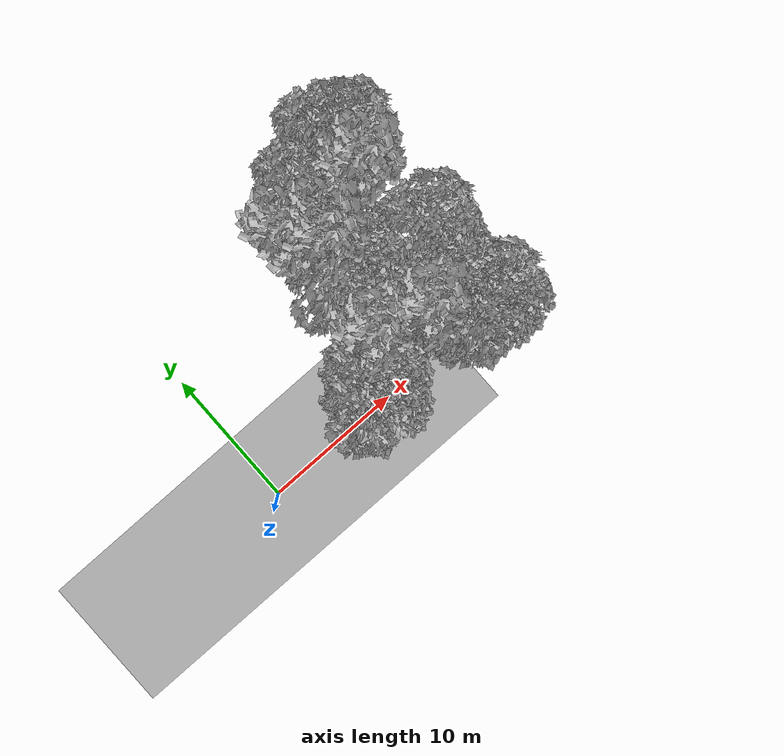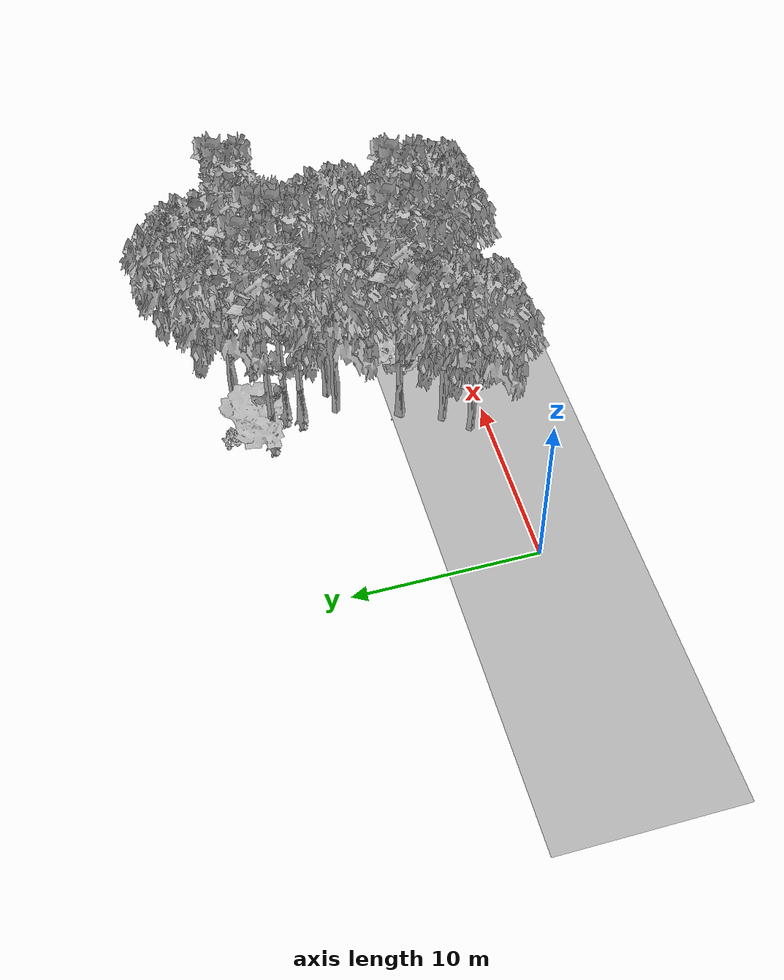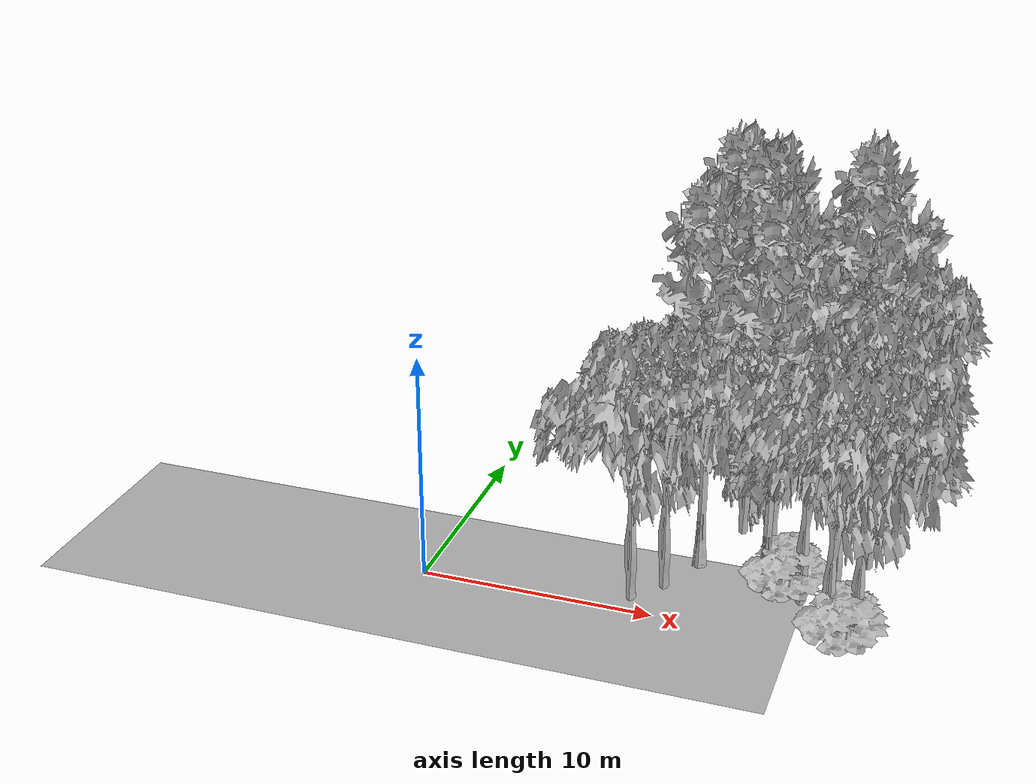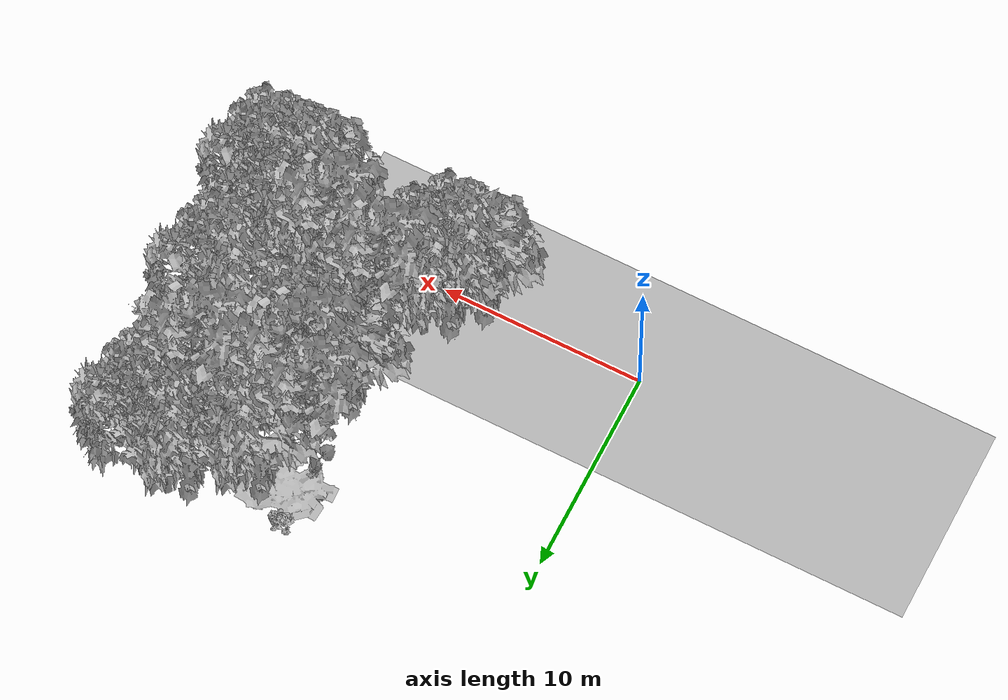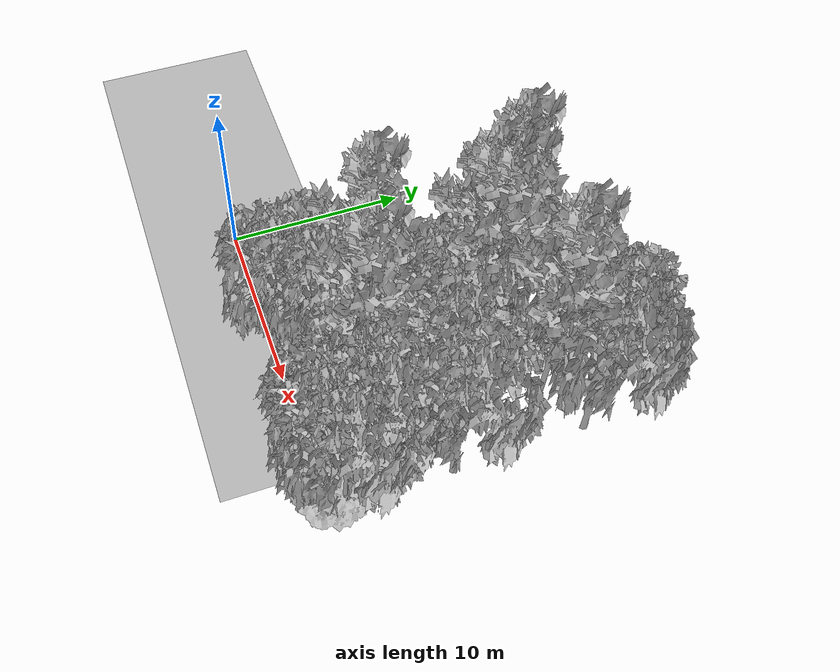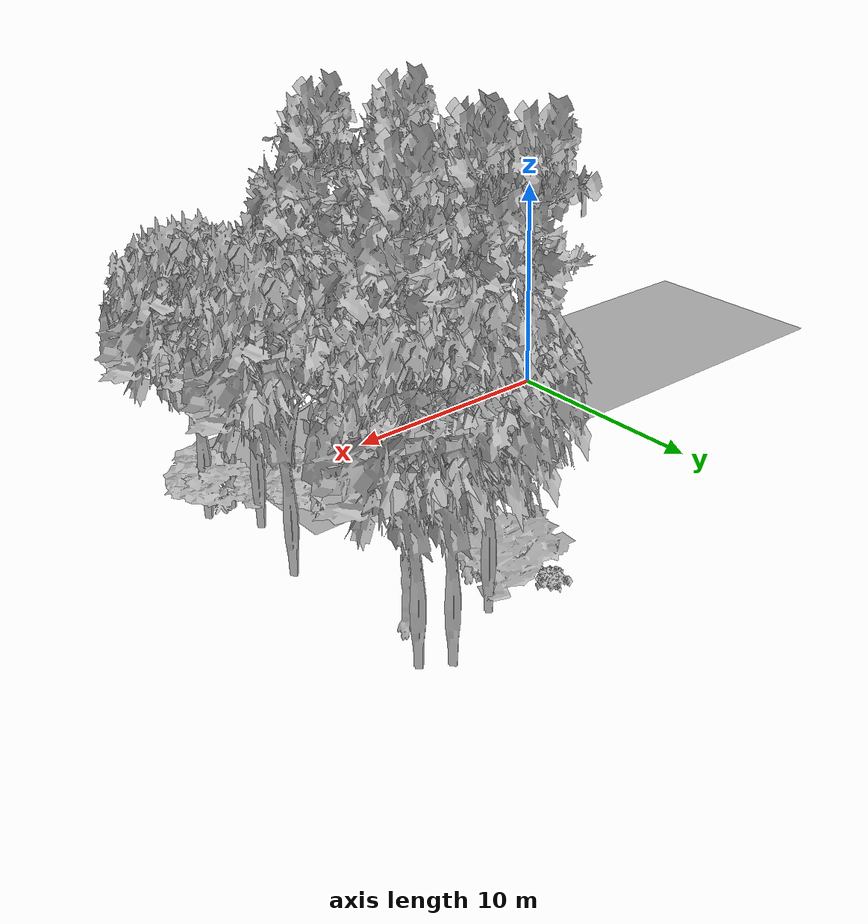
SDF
<sdf version="1.7">
 <world name="default">
  <model name="ground_plane">
   <static>1</static>
   <link name="link">
    <collision name="collision">
     <pose>-50 0 0 0 -0 0</pose>
     <geometry><plane><normal>0 0 1</normal><size>100 100</size></plane></geometry>
     <surface><contact><ode><min_depth>0.01</min_depth><max_vel>0</max_vel></ode></contact></surface>
    </collision>
    <visual name="grass">
     <cast_shadows>0</cast_shadows>
     <geometry>
      <mesh>
       <scale>0.5814285714285714 0.18142857142857144 0.1</scale>
       <uri>file://grass_plane/meshes/grass_plane.dae</uri>
      </mesh>
     </geometry>
    </visual>
   </link>
  </model>
  <model name="Tree 34">
   <static>1</static>
   <pose>12.466410479371433 10.467223716344542 0 1.57079 -0 0</pose>
   <link name="link">
    <collision name="collision">
     <geometry><mesh><scale>3.5 5 3.5</scale><uri>model://tree_9/meshes/tree_9.obj</uri></mesh></geometry>
    </collision>
    <visual name="visual">
     <geometry><mesh><scale>3.5 5 3.5</scale><uri>model://tree_9/meshes/tree_9.obj</uri></mesh></geometry>
    </visual>
   </link>
  </model>
  <model name="Tree 41">
   <static>1</static>
   <pose>14.609594612971613 3.5731768153624053 0 1.57079 -0 0</pose>
   <link name="link">
    <collision name="collision">
     <geometry><mesh><scale>4 2.5 4</scale><uri>model://tree_1/meshes/tree_1.obj</uri></mesh></geometry>
    </collision>
    <visual name="visual">
     <geometry><mesh><scale>4 2.5 4</scale><uri>model://tree_1/meshes/tree_1.obj</uri></mesh></geometry>
    </visual>
   </link>
  </model>
  <model name="Tree 43">
   <static>1</static>
   <pose>15.45251984434455 2.930289561966358 0 1.57079 -0 0</pose>
   <link name="link">
    <collision name="collision">
     <geometry><mesh><scale>3.5 5 3.5</scale><uri>model://tree_2/meshes/tree_2.obj</uri></mesh></geometry>
    </collision>
    <visual name="visual">
     <geometry><mesh><scale>3.5 5 3.5</scale><uri>model://tree_2/meshes/tree_2.obj</uri></mesh></geometry>
    </visual>
   </link>
  </model>
  <model name="Tree 44">
   <static>1</static>
   <pose>13.250256637453923 7.9307907941982805 0 1.57079 -0 0</pose>
   <link name="link">
    <collision name="collision">
     <geometry><mesh><scale>3.5 5 3.5</scale><uri>model://tree_2/meshes/tree_2.obj</uri></mesh></geometry>
    </collision>
    <visual name="visual">
     <geometry><mesh><scale>3.5 5 3.5</scale><uri>model://tree_2/meshes/tree_2.obj</uri></mesh></geometry>
    </visual>
   </link>
  </model>
  <model name="Tree 45">
   <static>1</static>
   <pose>10.916372198696905 4.414837857204155 0 1.57079 -0 0</pose>
   <link name="link">
    <collision name="collision">
     <geometry><mesh><scale>3.5 5 3.5</scale><uri>model://tree_9/meshes/tree_9.obj</uri></mesh></geometry>
    </collision>
    <visual name="visual">
     <geometry><mesh><scale>3.5 5 3.5</scale><uri>model://tree_9/meshes/tree_9.obj</uri></mesh></geometry>
    </visual>
   </link>
  </model>
  <model name="Tree 68">
   <static>1</static>
   <pose>10.67423131012282 11.533098857394474 0 1.57079 -0 0</pose>
   <link name="link">
    <collision name="collision">
     <geometry><mesh><scale>3.5 5 3.5</scale><uri>model://tree_9/meshes/tree_9.obj</uri></mesh></geometry>
    </collision>
    <visual name="visual">
     <geometry><mesh><scale>3.5 5 3.5</scale><uri>model://tree_9/meshes/tree_9.obj</uri></mesh></geometry>
    </visual>
   </link>
  </model>
  <model name="Tree 77">
   <static>1</static>
   <pose>17.409619313841475 0.6248812744540473 0 1.57079 -0 0</pose>
   <link name="link">
    <collision name="collision">
     <geometry><mesh><scale>4 2.5 4</scale><uri>model://tree_1/meshes/tree_1.obj</uri></mesh></geometry>
    </collision>
    <visual name="visual">
     <geometry><mesh><scale>4 2.5 4</scale><uri>model://tree_1/meshes/tree_1.obj</uri></mesh></geometry>
    </visual>
   </link>
  </model>
  <model name="Tree 156">
   <static>1</static>
   <pose>11.912080570059814 11.937886925704902 0 1.57079 -0 0</pose>
   <link name="link">
    <collision name="collision">
     <geometry><mesh><scale>3 2 3</scale><uri>model://tree_3/meshes/tree_3.obj</uri></mesh></geometry>
    </collision>
    <visual name="visual">
     <geometry><mesh><scale>3 2 3</scale><uri>model://tree_3/meshes/tree_3.obj</uri></mesh></geometry>
    </visual>
   </link>
  </model>
  <model name="Tree 168">
   <static>1</static>
   <pose>16.903839912393877 0.8399324901117886 0 1.57079 -0 0</pose>
   <link name="link">
    <collision name="collision">
     <geometry><mesh><scale>3.5 5 3.5</scale><uri>model://tree_2/meshes/tree_2.obj</uri></mesh></geometry>
    </collision>
    <visual name="visual">
     <geometry><mesh><scale>3.5 5 3.5</scale><uri>model://tree_2/meshes/tree_2.obj</uri></mesh></geometry>
    </visual>
   </link>
  </model>
  <model name="Tree 180">
   <static>1</static>
   <pose>16.58332668825082 14.442280283268577 0 1.57079 -0 0</pose>
   <link name="link">
    <collision name="collision">
     <geometry><mesh><scale>3.5 5 3.5</scale><uri>model://tree_2/meshes/tree_2.obj</uri></mesh></geometry>
    </collision>
    <visual name="visual">
     <geometry><mesh><scale>3.5 5 3.5</scale><uri>model://tree_2/meshes/tree_2.obj</uri></mesh></geometry>
    </visual>
   </link>
  </model>
  <model name="Tree 191">
   <static>1</static>
   <pose>17.51598859199045 13.80288012793055 0 1.57079 -0 0</pose>
   <link name="link">
    <collision name="collision">
     <geometry><mesh><scale>3.5 5 3.5</scale><uri>model://tree_2/meshes/tree_2.obj</uri></mesh></geometry>
    </collision>
    <visual name="visual">
     <geometry><mesh><scale>3.5 5 3.5</scale><uri>model://tree_2/meshes/tree_2.obj</uri></mesh></geometry>
    </visual>
   </link>
  </model>
  <model name="Tree 249">
   <static>1</static>
   <pose>9.829853274851601 2.247086602217667 0 1.57079 -0 0</pose>
   <link name="link">
    <collision name="collision">
     <geometry><mesh><scale>3.5 5 3.5</scale><uri>model://tree_2/meshes/tree_2.obj</uri></mesh></geometry>
    </collision>
    <visual name="visual">
     <geometry><mesh><scale>3.5 5 3.5</scale><uri>model://tree_2/meshes/tree_2.obj</uri></mesh></geometry>
    </visual>
   </link>
  </model>
  <model name="Tree 251">
   <static>1</static>
   <pose>11.985187638085208 7.717301040970053 0 1.57079 -0 0</pose>
   <link name="link">
    <collision name="collision">
     <geometry><mesh><scale>3.5 5 3.5</scale><uri>model://tree_2/meshes/tree_2.obj</uri></mesh></geometry>
    </collision>
    <visual name="visual">
     <geometry><mesh><scale>3.5 5 3.5</scale><uri>model://tree_2/meshes/tree_2.obj</uri></mesh></geometry>
    </visual>
   </link>
  </model>
  <model name="Tree 310">
   <static>1</static>
   <pose>18.00951762874213 0.9212049366918649 0 1.57079 -0 0</pose>
   <link name="link">
    <collision name="collision">
     <geometry><mesh><scale>3.5 5 3.5</scale><uri>model://tree_2/meshes/tree_2.obj</uri></mesh></geometry>
    </collision>
    <visual name="visual">
     <geometry><mesh><scale>3.5 5 3.5</scale><uri>model://tree_2/meshes/tree_2.obj</uri></mesh></geometry>
    </visual>
   </link>
  </model>
  <model name="Tree 322">
   <static>1</static>
   <pose>16.81356005689807 2.8987848196917625 0 1.57079 -0 0</pose>
   <link name="link">
    <collision name="collision">
     <geometry><mesh><scale>3.5 5 3.5</scale><uri>model://tree_2/meshes/tree_2.obj</uri></mesh></geometry>
    </collision>
    <visual name="visual">
     <geometry><mesh><scale>3.5 5 3.5</scale><uri>model://tree_2/meshes/tree_2.obj</uri></mesh></geometry>
    </visual>
   </link>
  </model>
  <model name="Tree 323">
   <static>1</static>
   <pose>13.782684700416489 12.991629451840115 0 1.57079 -0 0</pose>
   <link name="link">
    <collision name="collision">
     <geometry><mesh><scale>3.5 5 3.5</scale><uri>model://tree_2/meshes/tree_2.obj</uri></mesh></geometry>
    </collision>
    <visual name="visual">
     <geometry><mesh><scale>3.5 5 3.5</scale><uri>model://tree_2/meshes/tree_2.obj</uri></mesh></geometry>
    </visual>
   </link>
  </model>
  <model name="Tree 350">
   <static>1</static>
   <pose>8.745536139855204 0.9677677557486071 0 1.57079 -0 0</pose>
   <link name="link">
    <collision name="collision">
     <geometry><mesh><scale>3.5 5 3.5</scale><uri>model://tree_2/meshes/tree_2.obj</uri></mesh></geometry>
    </collision>
    <visual name="visual">
     <geometry><mesh><scale>3.5 5 3.5</scale><uri>model://tree_2/meshes/tree_2.obj</uri></mesh></geometry>
    </visual>
   </link>
  </model>
  <model name="Tree 372">
   <static>1</static>
   <pose>16.297153912003253 11.561539415662882 0 1.57079 -0 0</pose>
   <link name="link">
    <collision name="collision">
     <geometry><mesh><scale>3.5 5 3.5</scale><uri>model://tree_9/meshes/tree_9.obj</uri></mesh></geometry>
    </collision>
    <visual name="visual">
     <geometry><mesh><scale>3.5 5 3.5</scale><uri>model://tree_9/meshes/tree_9.obj</uri></mesh></geometry>
    </visual>
   </link>
  </model>
  <model name="Tree 404">
   <static>1</static>
   <pose>13.923452563179204 3.4342124268750602 0 1.57079 -0 0</pose>
   <link name="link">
    <collision name="collision">
     <geometry><mesh><scale>3.5 5 3.5</scale><uri>model://tree_9/meshes/tree_9.obj</uri></mesh></geometry>
    </collision>
    <visual name="visual">
     <geometry><mesh><scale>3.5 5 3.5</scale><uri>model://tree_9/meshes/tree_9.obj</uri></mesh></geometry>
    </visual>
   </link>
  </model>
  <model name="Tree 417">
   <static>1</static>
   <pose>12.013357148909442 9.65642418797389 0 1.57079 -0 0</pose>
   <link name="link">
    <collision name="collision">
     <geometry><mesh><scale>3.5 5 3.5</scale><uri>model://tree_9/meshes/tree_9.obj</uri></mesh></geometry>
    </collision>
    <visual name="visual">
     <geometry><mesh><scale>3.5 5 3.5</scale><uri>model://tree_9/meshes/tree_9.obj</uri></mesh></geometry>
    </visual>
   </link>
  </model>
  <model name="Tree 476">
   <static>1</static>
   <pose>17.664350469599086 6.5595830493432 0 1.57079 -0 0</pose>
   <link name="link">
    <collision name="collision">
     <geometry><mesh><scale>3.5 5 3.5</scale><uri>model://tree_2/meshes/tree_2.obj</uri></mesh></geometry>
    </collision>
    <visual name="visual">
     <geometry><mesh><scale>3.5 5 3.5</scale><uri>model://tree_2/meshes/tree_2.obj</uri></mesh></geometry>
    </visual>
   </link>
  </model>
  <model name="Bush 0">
   <static>1</static>
   <pose>11.409516242552478 13.61921758438464 0 1.57079 -0 0</pose>
   <link name="link">
    <collision name="collision">
     <geometry><mesh><scale>2 2 2</scale><uri>model://bush_3/meshes/bush_3.obj</uri></mesh></geometry>
     <surface><contact><collide_without_contact>false</collide_without_contact></contact></surface>
    </collision>
    <visual name="visual">
     <geometry><mesh><scale>2 2 2</scale><uri>model://bush_3/meshes/bush_3.obj</uri></mesh></geometry>
    </visual>
   </link>
  </model>
 </world>
</sdf>
